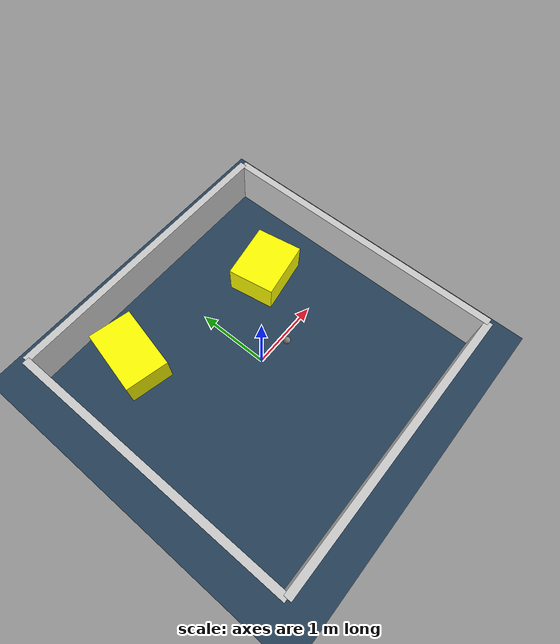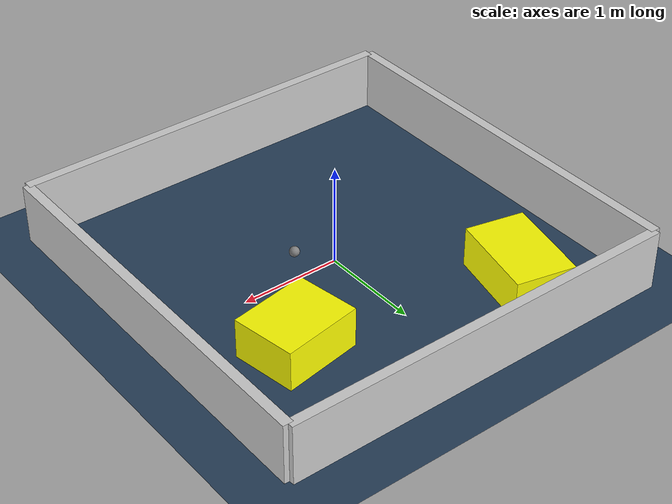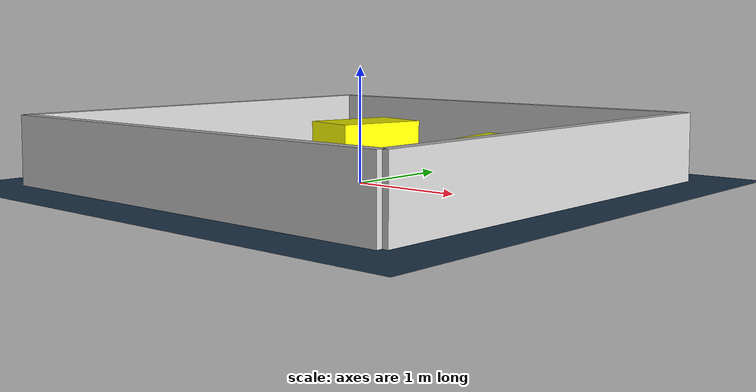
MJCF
<?xml version="1.0" ?>
<mujoco model="generated_environment">
  <option timestep="0.01" integrator="RK4" cone="elliptic"/>
  <default>
    <geom density="1"/>
  </default>
  <asset>
    <texture builtin="gradient" height="3072" rgb1="0.3 0.5 0.7" rgb2="0 0 0" type="skybox" width="512"/>
    <texture builtin="checker" height="300" mark="edge" markrgb="0.8 0.8 0.8" name="groundplane" rgb1="0.2 0.3 0.4" rgb2="0.1 0.2 0.3" type="2d" width="300"/>
    <material name="groundplane" reflectance="0.2" texrepeat="5 5" texture="groundplane" texuniform="true"/>
    <material name="robot" rgba="0.0 1.0 0.0 1"/>
  </asset>
  <worldbody>
    <light dir="0 0 -1" directional="true" pos="0 0 1.5"/>
    <geom condim="4" friction="1.0 0.005 0.001" material="groundplane" name="floor" size="0 0 0.05" type="plane"/>
    <body name="walls">
      <geom name="wall_1" condim="4" pos="-2.0 0.0 0.3" rgba="0.800000011920929 0.800000011920929 0.800000011920929 1.0" size="0.05 2.0 0.3" type="box"/>
      <geom name="wall_2" condim="4" pos="2.0 0.0 0.3" rgba="0.800000011920929 0.800000011920929 0.800000011920929 1.0" size="0.05 2.0 0.3" type="box"/>
      <geom name="wall_3" condim="4" pos="0.0 -2.0 0.3" rgba="0.800000011920929 0.800000011920929 0.800000011920929 1.0" size="2.0 0.05 0.3" type="box"/>
      <geom name="wall_4" condim="4" pos="0.0 2.0 0.3" rgba="0.800000011920929 0.800000011920929 0.800000011920929 1.0" size="2.0 0.05 0.3" type="box"/>
    </body>
    <body name="robot">
      <joint name="joint_x" type="slide" pos="0 0 0" axis="1 0 0"/>
      <joint name="joint_y" type="slide" pos="0 0 0" axis="0 1 0"/>
      <geom name="robot" type="sphere" pos="0.3666432841600291 -0.12567058417793775 0.2" size="0.05" mass="5." friction="1.0 0.005 0.0001" condim="4"/>
      <site name="sensor_ball"/>
    </body>
    <body name="obstacle_1_movable">
      <geom name="obstacle_1_movable" condim="4" pos="-1.085697594455937 1.26906777263199 0.2" euler="0 0 167.33595656336988" friction="1.0 0.005 0.001" rgba="1 1 0 1" size="0.29744917656960107 0.4542313772081336 0.2" type="box" mass="0.1"/>
      <joint type="free"/>
    </body>
    <body name="obstacle_2_movable">
      <geom name="obstacle_2_movable" condim="4" pos="1.0390132354103032 0.7972942871955899 0.2" euler="0 0 189.61420827887915" friction="1.0 0.005 0.001" rgba="1 1 0 1" size="0.3982684277389367 0.3212121507000104 0.2" type="box" mass="0.1"/>
      <joint type="free"/>
    </body>
  </worldbody>
  <actuator>
    <motor name="actuator_x" joint="joint_x" gear="1" ctrlrange="-1 1"/>
    <motor name="actuator_y" joint="joint_y" gear="1" ctrlrange="-1 1"/>
  </actuator>
</mujoco>
